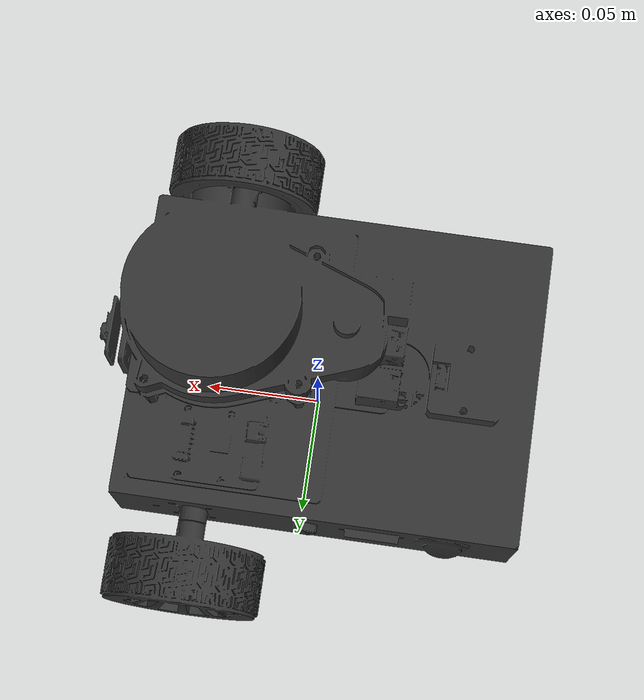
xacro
<?xml version="1.0" ?>
<robot name="stella" xmlns:xacro="http://ros.org/wiki/xacro">
  <xacro:property name="PI" value="3.1415926535897931"/>
  <xacro:property name="bodyHeight" value="0.164"/>
  <xacro:property name="bodyLength" value="0.18"/>
  <xacro:property name="bodyWidth" value="0.209"/>
  <xacro:property name="bodyMass" value="1.47"/>

  <xacro:include filename="$(find stella_helper)/urdf/materials.xacro"/>

  <link name="base_footprint"/>

  <joint name="base_joint" type="fixed">
    <parent link="base_footprint"/>
    <child link="base_link" />
    <origin xyz="0 0 0" rpy="0 0 0"/>
  </joint>

  <link name="base_link">
    <visual>
      <origin xyz="0 0 ${bodyHeight/2}" rpy="0 0 0"/>
      <geometry>
        <mesh filename="package://stella_helper/meshes/bases/STELLA-N2.stl" scale="0.001 0.001 0.001"/>
      </geometry>
      <material name="grey"/>
    </visual>

    <collision>
      <origin xyz="0 0 ${bodyHeight/2}" rpy="0 0 0"/>
      <geometry>
        <box size="${bodyLength} ${bodyWidth} ${bodyHeight}"/>
      </geometry>
    </collision>

    <inertial>
      <origin xyz="0 0 ${bodyHeight/2}" rpy="0 0 0"/>
      <mass value="${bodyMass}"/>
      <inertia ixx="${bodyMass*(bodyLength*bodyLength+bodyHeight*bodyHeight)/12}" ixy="0" ixz="0"
               iyy="${bodyMass*(bodyLength*bodyLength+bodyWidth*bodyWidth)/12}" iyz="0"
               izz="${bodyMass*(bodyWidth*bodyWidth+bodyHeight*bodyHeight)/12}" />
    </inertial>
  </link>

  <joint name="imu_joint" type="fixed">
    <parent link="base_link"/>
    <child link="imu_link"/>
    <origin xyz="${-bodyLength/2 + 0.025} 0 0.067" rpy="0 0 0"/>
  </joint>

  <link name="imu_link"/>

  <joint name="scan_joint" type="fixed">
    <parent link="base_link"/>
    <child link="base_scan"/>
    <origin xyz="${bodyLength/2 - 0.035} 0 ${bodyHeight - 0.008}" rpy="0 0 ${PI}"/>
  </joint>

  <link name="base_scan" />

</robot>

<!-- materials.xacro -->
<robot name="xacro_properties" xmlns:xacro="http://ros.org/wiki/xacro">
<material name="black">
  <color rgba="0.0 0.0 0.0 1.0"/>
</material>

<material name="blue">
  <color rgba="0.0 0.0 0.8 1.0"/>
</material>

<material name="green">
  <color rgba="0.0 0.8 0.0 1.0"/>
</material>

<material name="grey">
  <color rgba="0.2 0.2 0.2 1.0"/>
</material>

<material name="orange">
  <color rgba="${255/255} ${108/255} ${10/255} 1.0"/>
</material>

<material name="brown">
  <color rgba="${222/255} ${207/255} ${195/255} 1.0"/>
</material>

<material name="red">
  <color rgba="0.8 0.0 0.0 1.0"/>
</material>

<material name="white">
  <color rgba="1.0 1.0 1.0 1.0"/>
</material>

<material name="burgundy">
  <color rgba="${50.0/255} 0.0 ${13.0/255} 1.0"/>
</material>
</robot>
